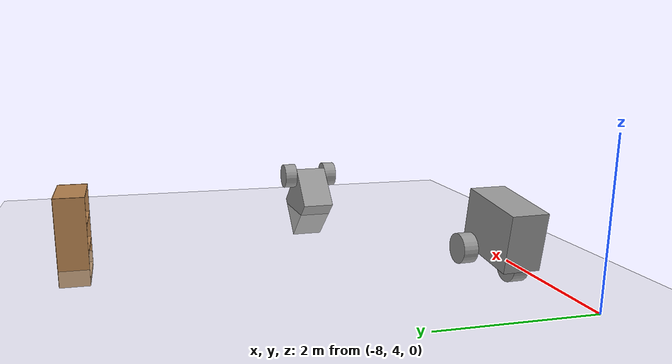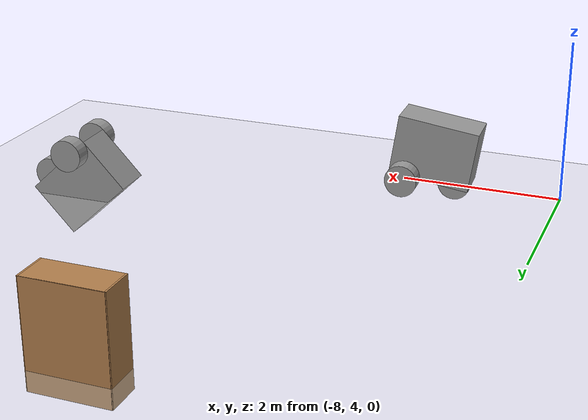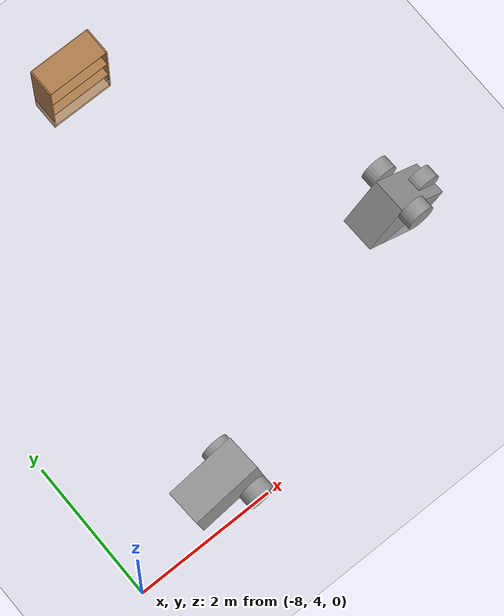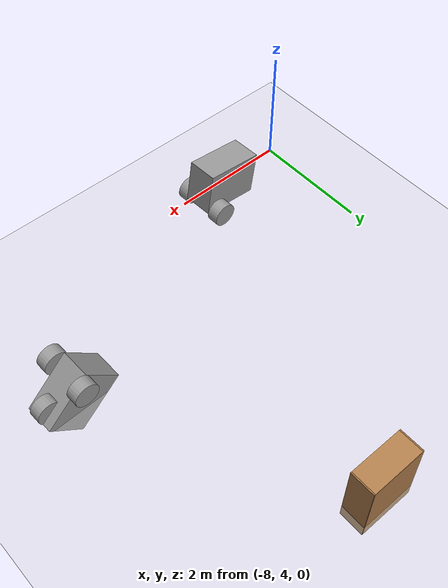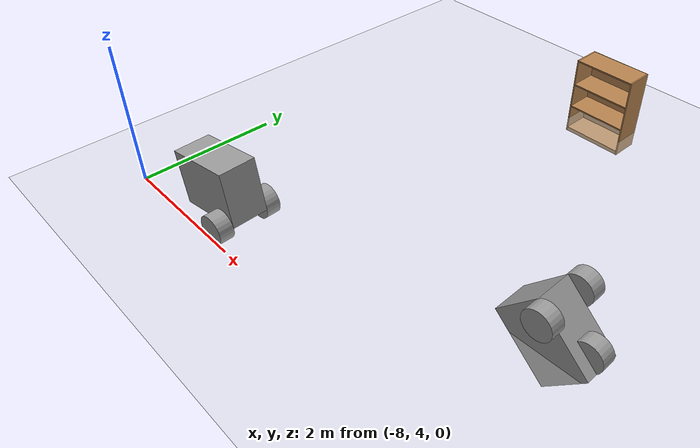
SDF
<sdf version="1.6">
 <world name="default">
  <model name="ground_plane">
   <static>1</static>
   <link name="link">
    <collision name="collision">
     <geometry><plane><normal>0 0 1</normal><size>100 100</size></plane></geometry>
     <surface><friction><ode><mu>100</mu><mu2>50</mu2></ode></friction></surface>
    </collision>
    <visual name="visual">
     <cast_shadows>0</cast_shadows>
     <geometry><plane><normal>0 0 1</normal><size>100 100</size></plane></geometry>
     <material>
      <script><uri>file://media/materials/scripts/gazebo.material</uri><name>Gazebo/Grey</name></script>
     </material>
    </visual>
   </link>
  </model>
  <model name="Triaxle">
   <link name="front_wheel">
    <pose>-0.3 4 0.2 1.5708 -0 0</pose>
    <inertial>
     <mass>1</mass>
     <inertia><ixx>0.145833</ixx><ixy>0</ixy><ixz>0</ixz><iyy>0.145833</iyy><iyz>0</iyz><izz>0.125</izz></inertia>
     <pose>0 0 0 1.5708 -0 0</pose>
    </inertial>
    <visual name="visual">
     <pose>0 0 0 0 -0 1.5708</pose>
     <geometry><cylinder><radius>0.2</radius><length>0.2</length></cylinder></geometry>
     <material>
      <lighting>1</lighting>
      <script><uri>file://media/materials/scripts/gazebo.material</uri><name>Gazebo/Grey</name></script>
      <shader type="pixel"><normal_map>__default__</normal_map></shader>
      <ambient>0.3 0.3 0.3 1</ambient>
      <diffuse>0.7 0.7 0.7 1</diffuse>
      <specular>0.01 0.01 0.01 1</specular>
      <emissive>0 0 0 1</emissive>
     </material>
    </visual>
    <collision name="collision">
     <geometry><cylinder><radius>0.2</radius><length>0.2</length></cylinder></geometry>
     <surface>
      <friction>
       <ode><mu>1</mu><mu2>1</mu2><fdir1>0 0 0</fdir1><slip1>0</slip1><slip2>0</slip2></ode>
       <torsional>
        <coefficient>1</coefficient>
        <patch_radius>0</patch_radius>
        <surface_radius>0</surface_radius>
        <use_patch_radius>1</use_patch_radius>
        <ode><slip>0</slip></ode>
       </torsional>
      </friction>
      <bounce><restitution_coefficient>0</restitution_coefficient><threshold>1e+06</threshold></bounce>
      <contact>
       <collide_without_contact>0</collide_without_contact>
       <collide_without_contact_bitmask>1</collide_without_contact_bitmask>
       <collide_bitmask>1</collide_bitmask>
       <ode>
        <soft_cfm>0</soft_cfm>
        <soft_erp>0.2</soft_erp>
        <kp>1e+13</kp>
        <kd>1</kd>
        <max_vel>0.01</max_vel>
        <min_depth>0</min_depth>
       </ode>
       <bullet>
        <split_impulse>1</split_impulse>
        <split_impulse_penetration_threshold>-0.01</split_impulse_penetration_threshold>
        <soft_cfm>0</soft_cfm>
        <soft_erp>0.2</soft_erp>
        <kp>1e+13</kp>
        <kd>1</kd>
       </bullet>
      </contact>
     </surface>
    </collision>
   </link>
   <link name="body">
    <pose>0 4 0.575 0 -0 0</pose>
    <inertial>
     <mass>1</mass>
     <inertia>
      <ixx>0.166667</ixx>
      <ixy>0</ixy>
      <ixz>0</ixz>
      <iyy>0.166667</iyy>
      <iyz>0</iyz>
      <izz>0.166667</izz>
     </inertia>
    </inertial>
    <visual name="visual">
     <geometry><box><size>1 0.5 0.75</size></box></geometry>
     <material>
      <lighting>1</lighting>
      <script><uri>file://media/materials/scripts/gazebo.material</uri><name>Gazebo/Grey</name></script>
      <shader type="pixel"><normal_map>__default__</normal_map></shader>
      <ambient>0.3 0.3 0.3 1</ambient>
      <diffuse>0.7 0.7 0.7 1</diffuse>
      <specular>0.01 0.01 0.01 1</specular>
      <emissive>0 0 0 1</emissive>
     </material>
    </visual>
    <collision name="collision">
     <geometry><box><size>1 0.5 0.75</size></box></geometry>
     <surface>
      <friction>
       <ode><mu>1</mu><mu2>1</mu2><fdir1>0 0 0</fdir1><slip1>0</slip1><slip2>0</slip2></ode>
       <torsional>
        <coefficient>1</coefficient>
        <patch_radius>0</patch_radius>
        <surface_radius>0</surface_radius>
        <use_patch_radius>1</use_patch_radius>
        <ode><slip>0</slip></ode>
       </torsional>
      </friction>
      <bounce><restitution_coefficient>0</restitution_coefficient><threshold>1e+06</threshold></bounce>
      <contact>
       <collide_without_contact>0</collide_without_contact>
       <collide_without_contact_bitmask>1</collide_without_contact_bitmask>
       <collide_bitmask>1</collide_bitmask>
       <ode>
        <soft_cfm>0</soft_cfm>
        <soft_erp>0.2</soft_erp>
        <kp>1e+13</kp>
        <kd>1</kd>
        <max_vel>0.01</max_vel>
        <min_depth>0</min_depth>
       </ode>
       <bullet>
        <split_impulse>1</split_impulse>
        <split_impulse_penetration_threshold>-0.01</split_impulse_penetration_threshold>
        <soft_cfm>0</soft_cfm>
        <soft_erp>0.2</soft_erp>
        <kp>1e+13</kp>
        <kd>1</kd>
       </bullet>
      </contact>
     </surface>
    </collision>
   </link>
   <link name="left_wheel">
    <pose>0.3 4.35 0.2 1.5708 -0 0</pose>
    <inertial>
     <mass>1</mass>
     <inertia><ixx>0.145833</ixx><ixy>0</ixy><ixz>0</ixz><iyy>0.145833</iyy><iyz>0</iyz><izz>0.125</izz></inertia>
     <pose>0 0 0 1.5708 -0 0</pose>
    </inertial>
    <visual name="visual">
     <pose>0 0 0 0 -0 1.5708</pose>
     <geometry><cylinder><radius>0.2</radius><length>0.2</length></cylinder></geometry>
     <material>
      <lighting>1</lighting>
      <script><uri>file://media/materials/scripts/gazebo.material</uri><name>Gazebo/Grey</name></script>
      <shader type="pixel"><normal_map>__default__</normal_map></shader>
      <ambient>0.3 0.3 0.3 1</ambient>
      <diffuse>0.7 0.7 0.7 1</diffuse>
      <specular>0.01 0.01 0.01 1</specular>
      <emissive>0 0 0 1</emissive>
     </material>
    </visual>
    <collision name="collision">
     <geometry><cylinder><radius>0.2</radius><length>0.2</length></cylinder></geometry>
     <surface>
      <friction>
       <ode><mu>1</mu><mu2>1</mu2><fdir1>0 0 0</fdir1><slip1>0</slip1><slip2>0</slip2></ode>
       <torsional>
        <coefficient>1</coefficient>
        <patch_radius>0</patch_radius>
        <surface_radius>0</surface_radius>
        <use_patch_radius>1</use_patch_radius>
        <ode><slip>0</slip></ode>
       </torsional>
      </friction>
      <bounce><restitution_coefficient>0</restitution_coefficient><threshold>1e+06</threshold></bounce>
      <contact>
       <collide_without_contact>0</collide_without_contact>
       <collide_without_contact_bitmask>1</collide_without_contact_bitmask>
       <collide_bitmask>1</collide_bitmask>
       <ode>
        <soft_cfm>0</soft_cfm>
        <soft_erp>0.2</soft_erp>
        <kp>1e+13</kp>
        <kd>1</kd>
        <max_vel>0.01</max_vel>
        <min_depth>0</min_depth>
       </ode>
       <bullet>
        <split_impulse>1</split_impulse>
        <split_impulse_penetration_threshold>-0.01</split_impulse_penetration_threshold>
        <soft_cfm>0</soft_cfm>
        <soft_erp>0.2</soft_erp>
        <kp>1e+13</kp>
        <kd>1</kd>
       </bullet>
      </contact>
     </surface>
    </collision>
   </link>
   <link name="right_wheel">
    <pose>0.3 3.65 0.2 1.5708 -0 0</pose>
    <inertial>
     <mass>1</mass>
     <inertia><ixx>0.145833</ixx><ixy>0</ixy><ixz>0</ixz><iyy>0.145833</iyy><iyz>0</iyz><izz>0.125</izz></inertia>
     <pose>0 0 0 1.5708 -0 0</pose>
    </inertial>
    <visual name="visual">
     <pose>0 0 0 0 -0 1.5708</pose>
     <geometry><cylinder><radius>0.2</radius><length>0.2</length></cylinder></geometry>
     <material>
      <lighting>1</lighting>
      <script><uri>file://media/materials/scripts/gazebo.material</uri><name>Gazebo/Grey</name></script>
      <shader type="pixel"><normal_map>__default__</normal_map></shader>
      <ambient>0.3 0.3 0.3 1</ambient>
      <diffuse>0.7 0.7 0.7 1</diffuse>
      <specular>0.01 0.01 0.01 1</specular>
      <emissive>0 0 0 1</emissive>
     </material>
    </visual>
    <collision name="collision">
     <geometry><cylinder><radius>0.2</radius><length>0.2</length></cylinder></geometry>
     <surface>
      <friction>
       <ode><mu>1</mu><mu2>1</mu2><fdir1>0 0 0</fdir1><slip1>0</slip1><slip2>0</slip2></ode>
       <torsional>
        <coefficient>1</coefficient>
        <patch_radius>0</patch_radius>
        <surface_radius>0</surface_radius>
        <use_patch_radius>1</use_patch_radius>
        <ode><slip>0</slip></ode>
       </torsional>
      </friction>
      <bounce><restitution_coefficient>0</restitution_coefficient><threshold>1e+06</threshold></bounce>
      <contact>
       <collide_without_contact>0</collide_without_contact>
       <collide_without_contact_bitmask>1</collide_without_contact_bitmask>
       <collide_bitmask>1</collide_bitmask>
       <ode>
        <soft_cfm>0</soft_cfm>
        <soft_erp>0.2</soft_erp>
        <kp>1e+13</kp>
        <kd>1</kd>
        <max_vel>0.01</max_vel>
        <min_depth>0</min_depth>
       </ode>
       <bullet>
        <split_impulse>1</split_impulse>
        <split_impulse_penetration_threshold>-0.01</split_impulse_penetration_threshold>
        <soft_cfm>0</soft_cfm>
        <soft_erp>0.2</soft_erp>
        <kp>1e+13</kp>
        <kd>1</kd>
       </bullet>
      </contact>
     </surface>
    </collision>
   </link>
   <joint name="front_wheel_joint" type="revolute">
    <parent>body</parent>
    <child>front_wheel</child>
    <axis>
     <xyz>0 0 1</xyz>
     <use_parent_model_frame>0</use_parent_model_frame>
     <limit>
      <lower>-1.79769e+308</lower>
      <upper>1.79769e+308</upper>
      <effort>-1</effort>
      <velocity>-1</velocity>
     </limit>
     <dynamics>
      <spring_reference>0</spring_reference>
      <spring_stiffness>0</spring_stiffness>
      <damping>0</damping>
      <friction>0</friction>
     </dynamics>
    </axis>
    <physics>
     <ode><limit><cfm>0</cfm><erp>0.2</erp></limit><suspension><cfm>0</cfm><erp>0.2</erp></suspension></ode>
    </physics>
   </joint>
   <joint name="left_wheel_joint" type="revolute">
    <parent>body</parent>
    <child>left_wheel</child>
    <axis>
     <xyz>0 0 1</xyz>
     <use_parent_model_frame>0</use_parent_model_frame>
     <limit>
      <lower>-1.79769e+308</lower>
      <upper>1.79769e+308</upper>
      <effort>-1</effort>
      <velocity>-1</velocity>
     </limit>
     <dynamics>
      <spring_reference>0</spring_reference>
      <spring_stiffness>0</spring_stiffness>
      <damping>0</damping>
      <friction>0</friction>
     </dynamics>
    </axis>
    <physics>
     <ode><limit><cfm>0</cfm><erp>0.2</erp></limit><suspension><cfm>0</cfm><erp>0.2</erp></suspension></ode>
    </physics>
   </joint>
   <joint name="right_wheel_joint" type="revolute">
    <parent>body</parent>
    <child>right_wheel</child>
    <axis>
     <xyz>0 0 1</xyz>
     <use_parent_model_frame>0</use_parent_model_frame>
     <limit>
      <lower>-1.79769e+308</lower>
      <upper>1.79769e+308</upper>
      <effort>-1</effort>
      <velocity>-1</velocity>
     </limit>
     <dynamics>
      <spring_reference>0</spring_reference>
      <spring_stiffness>0</spring_stiffness>
      <damping>0</damping>
      <friction>0</friction>
     </dynamics>
    </axis>
    <physics>
     <ode><limit><cfm>0</cfm><erp>0.2</erp></limit><suspension><cfm>0</cfm><erp>0.2</erp></suspension></ode>
    </physics>
   </joint>
   <static>0</static>
   <pose>-6.2385 0.384305 0.046315 -6e-06 -0.147594 0.048064</pose>
  </model>
  <model name="Triaxle_0">
   <link name="front_wheel">
    <pose>-0.3 4 0.2 1.5708 -0 0</pose>
    <inertial>
     <mass>1</mass>
     <inertia><ixx>0.145833</ixx><ixy>0</ixy><ixz>0</ixz><iyy>0.145833</iyy><iyz>0</iyz><izz>0.125</izz></inertia>
     <pose>0 0 0 1.5708 -0 0</pose>
    </inertial>
    <visual name="visual">
     <pose>0 0 0 0 -0 1.5708</pose>
     <geometry><cylinder><radius>0.2</radius><length>0.2</length></cylinder></geometry>
     <material>
      <lighting>1</lighting>
      <script><uri>file://media/materials/scripts/gazebo.material</uri><name>Gazebo/Grey</name></script>
      <shader type="pixel"><normal_map>__default__</normal_map></shader>
      <ambient>0.3 0.3 0.3 1</ambient>
      <diffuse>0.7 0.7 0.7 1</diffuse>
      <specular>0.01 0.01 0.01 1</specular>
      <emissive>0 0 0 1</emissive>
     </material>
    </visual>
    <collision name="collision">
     <geometry><cylinder><radius>0.2</radius><length>0.2</length></cylinder></geometry>
     <surface>
      <friction>
       <ode><mu>1</mu><mu2>1</mu2><fdir1>0 0 0</fdir1><slip1>0</slip1><slip2>0</slip2></ode>
       <torsional>
        <coefficient>1</coefficient>
        <patch_radius>0</patch_radius>
        <surface_radius>0</surface_radius>
        <use_patch_radius>1</use_patch_radius>
        <ode><slip>0</slip></ode>
       </torsional>
      </friction>
      <bounce><restitution_coefficient>0</restitution_coefficient><threshold>1e+06</threshold></bounce>
      <contact>
       <collide_without_contact>0</collide_without_contact>
       <collide_without_contact_bitmask>1</collide_without_contact_bitmask>
       <collide_bitmask>1</collide_bitmask>
       <ode>
        <soft_cfm>0</soft_cfm>
        <soft_erp>0.2</soft_erp>
        <kp>1e+13</kp>
        <kd>1</kd>
        <max_vel>0.01</max_vel>
        <min_depth>0</min_depth>
       </ode>
       <bullet>
        <split_impulse>1</split_impulse>
        <split_impulse_penetration_threshold>-0.01</split_impulse_penetration_threshold>
        <soft_cfm>0</soft_cfm>
        <soft_erp>0.2</soft_erp>
        <kp>1e+13</kp>
        <kd>1</kd>
       </bullet>
      </contact>
     </surface>
    </collision>
   </link>
   <link name="body">
    <pose>0 4 0.575 0 -0 0</pose>
    <inertial>
     <mass>1</mass>
     <inertia>
      <ixx>0.166667</ixx>
      <ixy>0</ixy>
      <ixz>0</ixz>
      <iyy>0.166667</iyy>
      <iyz>0</iyz>
      <izz>0.166667</izz>
     </inertia>
    </inertial>
    <visual name="visual">
     <geometry><box><size>1 0.5 0.75</size></box></geometry>
     <material>
      <lighting>1</lighting>
      <script><uri>file://media/materials/scripts/gazebo.material</uri><name>Gazebo/Grey</name></script>
      <shader type="pixel"><normal_map>__default__</normal_map></shader>
      <ambient>0.3 0.3 0.3 1</ambient>
      <diffuse>0.7 0.7 0.7 1</diffuse>
      <specular>0.01 0.01 0.01 1</specular>
      <emissive>0 0 0 1</emissive>
     </material>
    </visual>
    <collision name="collision">
     <geometry><box><size>1 0.5 0.75</size></box></geometry>
     <surface>
      <friction>
       <ode><mu>1</mu><mu2>1</mu2><fdir1>0 0 0</fdir1><slip1>0</slip1><slip2>0</slip2></ode>
       <torsional>
        <coefficient>1</coefficient>
        <patch_radius>0</patch_radius>
        <surface_radius>0</surface_radius>
        <use_patch_radius>1</use_patch_radius>
        <ode><slip>0</slip></ode>
       </torsional>
      </friction>
      <bounce><restitution_coefficient>0</restitution_coefficient><threshold>1e+06</threshold></bounce>
      <contact>
       <collide_without_contact>0</collide_without_contact>
       <collide_without_contact_bitmask>1</collide_without_contact_bitmask>
       <collide_bitmask>1</collide_bitmask>
       <ode>
        <soft_cfm>0</soft_cfm>
        <soft_erp>0.2</soft_erp>
        <kp>1e+13</kp>
        <kd>1</kd>
        <max_vel>0.01</max_vel>
        <min_depth>0</min_depth>
       </ode>
       <bullet>
        <split_impulse>1</split_impulse>
        <split_impulse_penetration_threshold>-0.01</split_impulse_penetration_threshold>
        <soft_cfm>0</soft_cfm>
        <soft_erp>0.2</soft_erp>
        <kp>1e+13</kp>
        <kd>1</kd>
       </bullet>
      </contact>
     </surface>
    </collision>
   </link>
   <link name="left_wheel">
    <pose>0.3 4.35 0.2 1.5708 -0 0</pose>
    <inertial>
     <mass>1</mass>
     <inertia><ixx>0.145833</ixx><ixy>0</ixy><ixz>0</ixz><iyy>0.145833</iyy><iyz>0</iyz><izz>0.125</izz></inertia>
     <pose>0 0 0 1.5708 -0 0</pose>
    </inertial>
    <visual name="visual">
     <pose>0 0 0 0 -0 1.5708</pose>
     <geometry><cylinder><radius>0.2</radius><length>0.2</length></cylinder></geometry>
     <material>
      <lighting>1</lighting>
      <script><uri>file://media/materials/scripts/gazebo.material</uri><name>Gazebo/Grey</name></script>
      <shader type="pixel"><normal_map>__default__</normal_map></shader>
      <ambient>0.3 0.3 0.3 1</ambient>
      <diffuse>0.7 0.7 0.7 1</diffuse>
      <specular>0.01 0.01 0.01 1</specular>
      <emissive>0 0 0 1</emissive>
     </material>
    </visual>
    <collision name="collision">
     <geometry><cylinder><radius>0.2</radius><length>0.2</length></cylinder></geometry>
     <surface>
      <friction>
       <ode><mu>1</mu><mu2>1</mu2><fdir1>0 0 0</fdir1><slip1>0</slip1><slip2>0</slip2></ode>
       <torsional>
        <coefficient>1</coefficient>
        <patch_radius>0</patch_radius>
        <surface_radius>0</surface_radius>
        <use_patch_radius>1</use_patch_radius>
        <ode><slip>0</slip></ode>
       </torsional>
      </friction>
      <bounce><restitution_coefficient>0</restitution_coefficient><threshold>1e+06</threshold></bounce>
      <contact>
       <collide_without_contact>0</collide_without_contact>
       <collide_without_contact_bitmask>1</collide_without_contact_bitmask>
       <collide_bitmask>1</collide_bitmask>
       <ode>
        <soft_cfm>0</soft_cfm>
        <soft_erp>0.2</soft_erp>
        <kp>1e+13</kp>
        <kd>1</kd>
        <max_vel>0.01</max_vel>
        <min_depth>0</min_depth>
       </ode>
       <bullet>
        <split_impulse>1</split_impulse>
        <split_impulse_penetration_threshold>-0.01</split_impulse_penetration_threshold>
        <soft_cfm>0</soft_cfm>
        <soft_erp>0.2</soft_erp>
        <kp>1e+13</kp>
        <kd>1</kd>
       </bullet>
      </contact>
     </surface>
    </collision>
   </link>
   <link name="right_wheel">
    <pose>0.3 3.65 0.2 1.5708 -0 0</pose>
    <inertial>
     <mass>1</mass>
     <inertia><ixx>0.145833</ixx><ixy>0</ixy><ixz>0</ixz><iyy>0.145833</iyy><iyz>0</iyz><izz>0.125</izz></inertia>
     <pose>0 0 0 1.5708 -0 0</pose>
    </inertial>
    <visual name="visual">
     <pose>0 0 0 0 -0 1.5708</pose>
     <geometry><cylinder><radius>0.2</radius><length>0.2</length></cylinder></geometry>
     <material>
      <lighting>1</lighting>
      <script><uri>file://media/materials/scripts/gazebo.material</uri><name>Gazebo/Grey</name></script>
      <shader type="pixel"><normal_map>__default__</normal_map></shader>
      <ambient>0.3 0.3 0.3 1</ambient>
      <diffuse>0.7 0.7 0.7 1</diffuse>
      <specular>0.01 0.01 0.01 1</specular>
      <emissive>0 0 0 1</emissive>
     </material>
    </visual>
    <collision name="collision">
     <geometry><cylinder><radius>0.2</radius><length>0.2</length></cylinder></geometry>
     <surface>
      <friction>
       <ode><mu>1</mu><mu2>1</mu2><fdir1>0 0 0</fdir1><slip1>0</slip1><slip2>0</slip2></ode>
       <torsional>
        <coefficient>1</coefficient>
        <patch_radius>0</patch_radius>
        <surface_radius>0</surface_radius>
        <use_patch_radius>1</use_patch_radius>
        <ode><slip>0</slip></ode>
       </torsional>
      </friction>
      <bounce><restitution_coefficient>0</restitution_coefficient><threshold>1e+06</threshold></bounce>
      <contact>
       <collide_without_contact>0</collide_without_contact>
       <collide_without_contact_bitmask>1</collide_without_contact_bitmask>
       <collide_bitmask>1</collide_bitmask>
       <ode>
        <soft_cfm>0</soft_cfm>
        <soft_erp>0.2</soft_erp>
        <kp>1e+13</kp>
        <kd>1</kd>
        <max_vel>0.01</max_vel>
        <min_depth>0</min_depth>
       </ode>
       <bullet>
        <split_impulse>1</split_impulse>
        <split_impulse_penetration_threshold>-0.01</split_impulse_penetration_threshold>
        <soft_cfm>0</soft_cfm>
        <soft_erp>0.2</soft_erp>
        <kp>1e+13</kp>
        <kd>1</kd>
       </bullet>
      </contact>
     </surface>
    </collision>
   </link>
   <joint name="front_wheel_joint" type="revolute">
    <parent>body</parent>
    <child>front_wheel</child>
    <axis>
     <xyz>0 0 1</xyz>
     <use_parent_model_frame>0</use_parent_model_frame>
     <limit>
      <lower>-1.79769e+308</lower>
      <upper>1.79769e+308</upper>
      <effort>-1</effort>
      <velocity>-1</velocity>
     </limit>
     <dynamics>
      <spring_reference>0</spring_reference>
      <spring_stiffness>0</spring_stiffness>
      <damping>0</damping>
      <friction>0</friction>
     </dynamics>
    </axis>
    <physics>
     <ode><limit><cfm>0</cfm><erp>0.2</erp></limit><suspension><cfm>0</cfm><erp>0.2</erp></suspension></ode>
    </physics>
   </joint>
   <joint name="left_wheel_joint" type="revolute">
    <parent>body</parent>
    <child>left_wheel</child>
    <axis>
     <xyz>0 0 1</xyz>
     <use_parent_model_frame>0</use_parent_model_frame>
     <limit>
      <lower>-1.79769e+308</lower>
      <upper>1.79769e+308</upper>
      <effort>-1</effort>
      <velocity>-1</velocity>
     </limit>
     <dynamics>
      <spring_reference>0</spring_reference>
      <spring_stiffness>0</spring_stiffness>
      <damping>0</damping>
      <friction>0</friction>
     </dynamics>
    </axis>
    <physics>
     <ode><limit><cfm>0</cfm><erp>0.2</erp></limit><suspension><cfm>0</cfm><erp>0.2</erp></suspension></ode>
    </physics>
   </joint>
   <joint name="right_wheel_joint" type="revolute">
    <parent>body</parent>
    <child>right_wheel</child>
    <axis>
     <xyz>0 0 1</xyz>
     <use_parent_model_frame>0</use_parent_model_frame>
     <limit>
      <lower>-1.79769e+308</lower>
      <upper>1.79769e+308</upper>
      <effort>-1</effort>
      <velocity>-1</velocity>
     </limit>
     <dynamics>
      <spring_reference>0</spring_reference>
      <spring_stiffness>0</spring_stiffness>
      <damping>0</damping>
      <friction>0</friction>
     </dynamics>
    </axis>
    <physics>
     <ode><limit><cfm>0</cfm><erp>0.2</erp></limit><suspension><cfm>0</cfm><erp>0.2</erp></suspension></ode>
    </physics>
   </joint>
   <static>0</static>
   <pose>-1.92708 1.87107 0.550793 3.14159 -0.749726 -3.1157</pose>
  </model>
  <model name="bookshelf">
   <static>1</static>
   <link name="link">
    <inertial><mass>1</mass></inertial>
    <collision name="back">
     <pose>0 0.005 0.6 0 -0 0</pose>
     <geometry><box><size>0.9 0.01 1.2</size></box></geometry>
    </collision>
    <visual name="visual1">
     <pose>0 0.005 0.6 0 -0 0</pose>
     <geometry><box><size>0.9 0.01 1.2</size></box></geometry>
     <material>
      <script><uri>file://media/materials/scripts/gazebo.material</uri><name>Gazebo/Wood</name></script>
     </material>
    </visual>
    <collision name="left_side">
     <pose>0.45 -0.195 0.6 0 -0 0</pose>
     <geometry><box><size>0.02 0.4 1.2</size></box></geometry>
    </collision>
    <visual name="visual2">
     <pose>0.45 -0.195 0.6 0 -0 0</pose>
     <geometry><box><size>0.02 0.4 1.2</size></box></geometry>
     <material>
      <script><uri>file://media/materials/scripts/gazebo.material</uri><name>Gazebo/Wood</name></script>
     </material>
    </visual>
    <collision name="right_side">
     <pose>-0.45 -0.195 0.6 0 -0 0</pose>
     <geometry><box><size>0.02 0.4 1.2</size></box></geometry>
    </collision>
    <visual name="visual3">
     <pose>-0.45 -0.195 0.6 0 -0 0</pose>
     <geometry><box><size>0.02 0.4 1.2</size></box></geometry>
     <material>
      <script><uri>file://media/materials/scripts/gazebo.material</uri><name>Gazebo/Wood</name></script>
     </material>
    </visual>
    <collision name="bottom">
     <pose>0 -0.195 0.03 0 -0 0</pose>
     <geometry><box><size>0.88 0.4 0.06</size></box></geometry>
    </collision>
    <visual name="visual4">
     <pose>0 -0.195 0.03 0 -0 0</pose>
     <geometry><box><size>0.88 0.4 0.06</size></box></geometry>
     <material>
      <script><uri>file://media/materials/scripts/gazebo.material</uri><name>Gazebo/Wood</name></script>
     </material>
    </visual>
    <collision name="top">
     <pose>0 -0.195 1.19 0 -0 0</pose>
     <geometry><box><size>0.88 0.4 0.02</size></box></geometry>
    </collision>
    <visual name="visual5">
     <pose>0 -0.195 1.19 0 -0 0</pose>
     <geometry><box><size>0.88 0.4 0.02</size></box></geometry>
     <material>
      <script><uri>file://media/materials/scripts/gazebo.material</uri><name>Gazebo/Wood</name></script>
     </material>
    </visual>
    <collision name="low_shelf">
     <pose>0 -0.195 0.43 0 -0 0</pose>
     <geometry><box><size>0.88 0.4 0.02</size></box></geometry>
    </collision>
    <visual name="visual6">
     <pose>0 -0.195 0.43 0 -0 0</pose>
     <geometry><box><size>0.88 0.4 0.02</size></box></geometry>
     <material>
      <script><uri>file://media/materials/scripts/gazebo.material</uri><name>Gazebo/Wood</name></script>
     </material>
    </visual>
    <collision name="high_shelf">
     <pose>0 -0.195 0.8 0 -0 0</pose>
     <geometry><box><size>0.88 0.4 0.02</size></box></geometry>
    </collision>
    <visual name="visual7">
     <pose>0 -0.195 0.8 0 -0 0</pose>
     <geometry><box><size>0.88 0.4 0.02</size></box></geometry>
     <material>
      <script><uri>file://media/materials/scripts/gazebo.material</uri><name>Gazebo/Wood</name></script>
     </material>
    </visual>
   </link>
   <pose>-4.57148 9.91501 -0.233333 0 0 -2e-06</pose>
  </model>
 </world>
</sdf>
